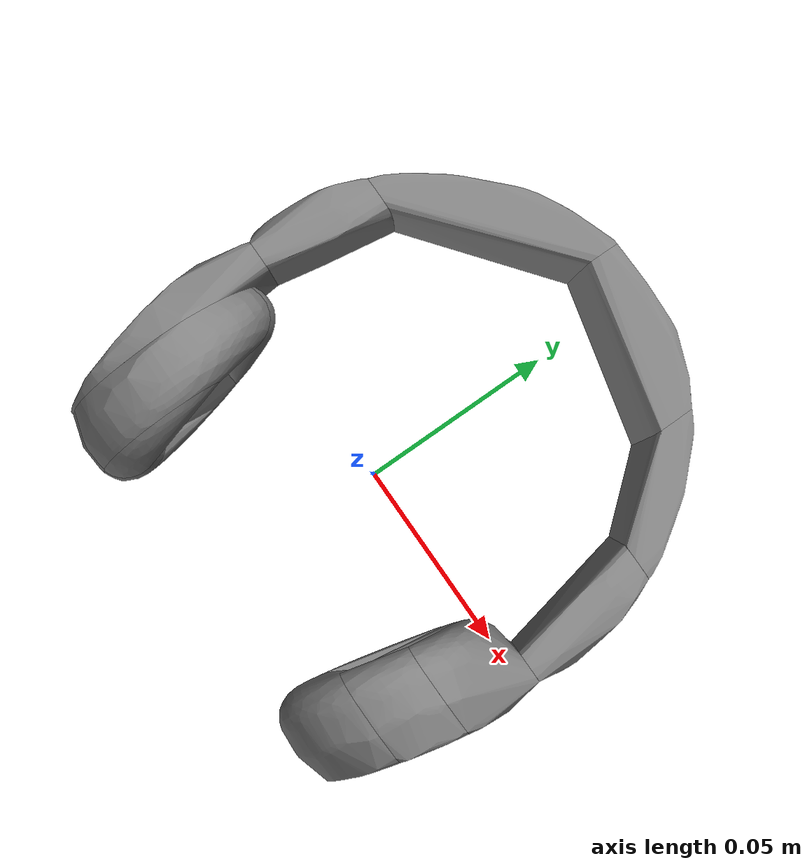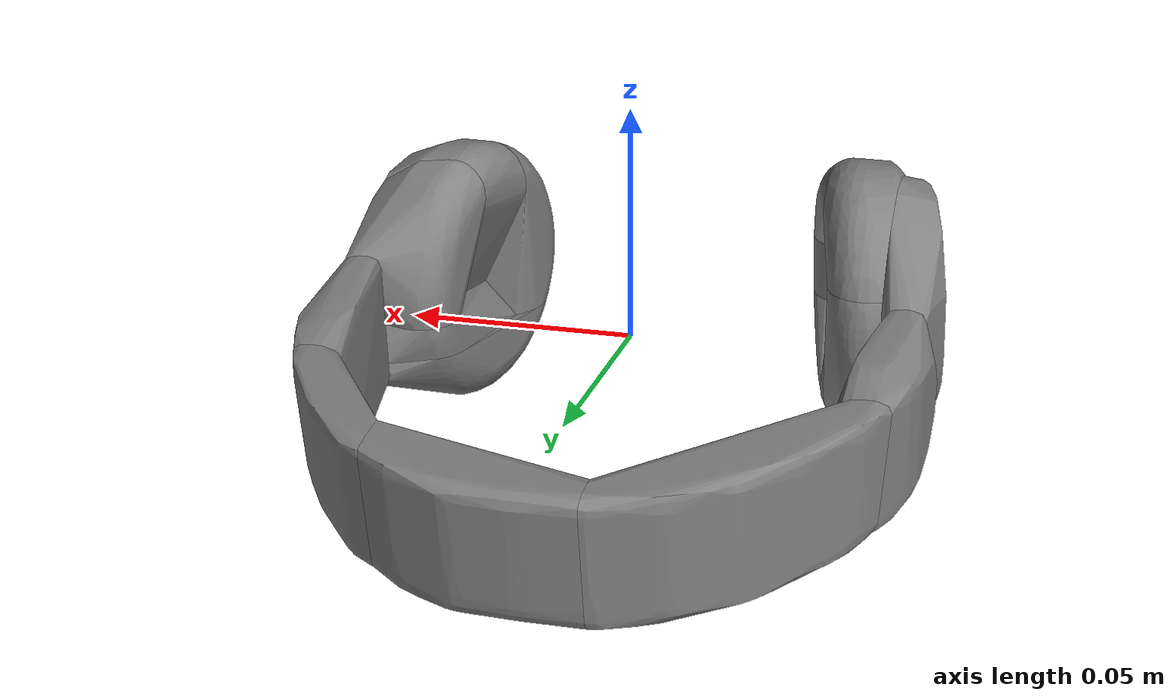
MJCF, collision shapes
<mujoco model="headphones">
  <compiler meshdir="."/>

  <asset>
    <mesh name="headphones" file="headphones.stl"/>
    <mesh name="headphones_collision_hull_000" file="headphones_collision_hull_000.stl"/>
    <mesh name="headphones_collision_hull_001" file="headphones_collision_hull_001.stl"/>
    <mesh name="headphones_collision_hull_002" file="headphones_collision_hull_002.stl"/>
    <mesh name="headphones_collision_hull_003" file="headphones_collision_hull_003.stl"/>
    <mesh name="headphones_collision_hull_004" file="headphones_collision_hull_004.stl"/>
    <mesh name="headphones_collision_hull_005" file="headphones_collision_hull_005.stl"/>
    <mesh name="headphones_collision_hull_006" file="headphones_collision_hull_006.stl"/>
    <mesh name="headphones_collision_hull_007" file="headphones_collision_hull_007.stl"/>
    <mesh name="headphones_collision_hull_008" file="headphones_collision_hull_008.stl"/>
    <mesh name="headphones_collision_hull_009" file="headphones_collision_hull_009.stl"/>
    <mesh name="headphones_collision_hull_010" file="headphones_collision_hull_010.stl"/>
    <mesh name="headphones_collision_hull_011" file="headphones_collision_hull_011.stl"/>
    <mesh name="headphones_collision_hull_012" file="headphones_collision_hull_012.stl"/>
    <mesh name="headphones_collision_hull_013" file="headphones_collision_hull_013.stl"/>
    <mesh name="headphones_collision_hull_014" file="headphones_collision_hull_014.stl"/>
    <mesh name="headphones_collision_hull_015" file="headphones_collision_hull_015.stl"/>
    <mesh name="headphones_collision_hull_016" file="headphones_collision_hull_016.stl"/>
    <mesh name="headphones_collision_hull_017" file="headphones_collision_hull_017.stl"/>
  </asset>

  <worldbody>
    <body name="object">
      <freejoint name="object_joint"/>
      <geom name="object_visual" type="mesh" mesh="headphones"
            contype="0" conaffinity="0" group="2" rgba="0.9 0.9 0.8 1" mass="0"/>
      <geom name="headphones_collision_hull_000_collision" type="mesh" mesh="headphones_collision_hull_000"
            mass="0.0028" condim="6" friction="1.0 0.002 0.002" priority="1"/>
      <geom name="headphones_collision_hull_001_collision" type="mesh" mesh="headphones_collision_hull_001"
            mass="0.0028" condim="6" friction="1.0 0.002 0.002" priority="1"/>
      <geom name="headphones_collision_hull_002_collision" type="mesh" mesh="headphones_collision_hull_002"
            mass="0.0028" condim="6" friction="1.0 0.002 0.002" priority="1"/>
      <geom name="headphones_collision_hull_003_collision" type="mesh" mesh="headphones_collision_hull_003"
            mass="0.0028" condim="6" friction="1.0 0.002 0.002" priority="1"/>
      <geom name="headphones_collision_hull_004_collision" type="mesh" mesh="headphones_collision_hull_004"
            mass="0.0028" condim="6" friction="1.0 0.002 0.002" priority="1"/>
      <geom name="headphones_collision_hull_005_collision" type="mesh" mesh="headphones_collision_hull_005"
            mass="0.0028" condim="6" friction="1.0 0.002 0.002" priority="1"/>
      <geom name="headphones_collision_hull_006_collision" type="mesh" mesh="headphones_collision_hull_006"
            mass="0.0028" condim="6" friction="1.0 0.002 0.002" priority="1"/>
      <geom name="headphones_collision_hull_007_collision" type="mesh" mesh="headphones_collision_hull_007"
            mass="0.0028" condim="6" friction="1.0 0.002 0.002" priority="1"/>
      <geom name="headphones_collision_hull_008_collision" type="mesh" mesh="headphones_collision_hull_008"
            mass="0.0028" condim="6" friction="1.0 0.002 0.002" priority="1"/>
      <geom name="headphones_collision_hull_009_collision" type="mesh" mesh="headphones_collision_hull_009"
            mass="0.0028" condim="6" friction="1.0 0.002 0.002" priority="1"/>
      <geom name="headphones_collision_hull_010_collision" type="mesh" mesh="headphones_collision_hull_010"
            mass="0.0028" condim="6" friction="1.0 0.002 0.002" priority="1"/>
      <geom name="headphones_collision_hull_011_collision" type="mesh" mesh="headphones_collision_hull_011"
            mass="0.0028" condim="6" friction="1.0 0.002 0.002" priority="1"/>
      <geom name="headphones_collision_hull_012_collision" type="mesh" mesh="headphones_collision_hull_012"
            mass="0.0028" condim="6" friction="1.0 0.002 0.002" priority="1"/>
      <geom name="headphones_collision_hull_013_collision" type="mesh" mesh="headphones_collision_hull_013"
            mass="0.0028" condim="6" friction="1.0 0.002 0.002" priority="1"/>
      <geom name="headphones_collision_hull_014_collision" type="mesh" mesh="headphones_collision_hull_014"
            mass="0.0028" condim="6" friction="1.0 0.002 0.002" priority="1"/>
      <geom name="headphones_collision_hull_015_collision" type="mesh" mesh="headphones_collision_hull_015"
            mass="0.0028" condim="6" friction="1.0 0.002 0.002" priority="1"/>
      <geom name="headphones_collision_hull_016_collision" type="mesh" mesh="headphones_collision_hull_016"
            mass="0.0028" condim="6" friction="1.0 0.002 0.002" priority="1"/>
      <geom name="headphones_collision_hull_017_collision" type="mesh" mesh="headphones_collision_hull_017"
            mass="0.0028" condim="6" friction="1.0 0.002 0.002" priority="1"/>
    </body>
  </worldbody>
</mujoco>
